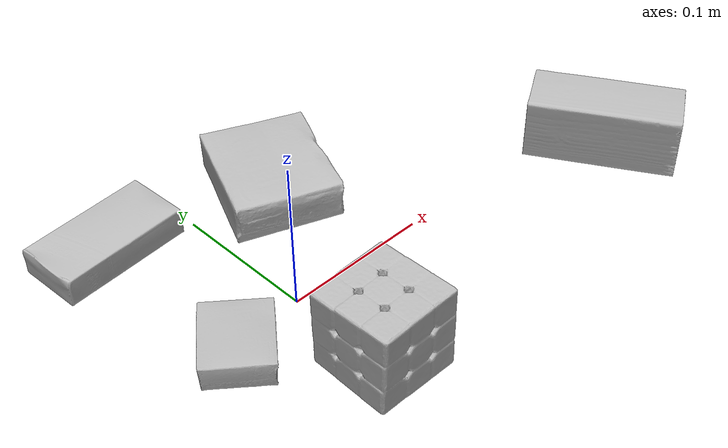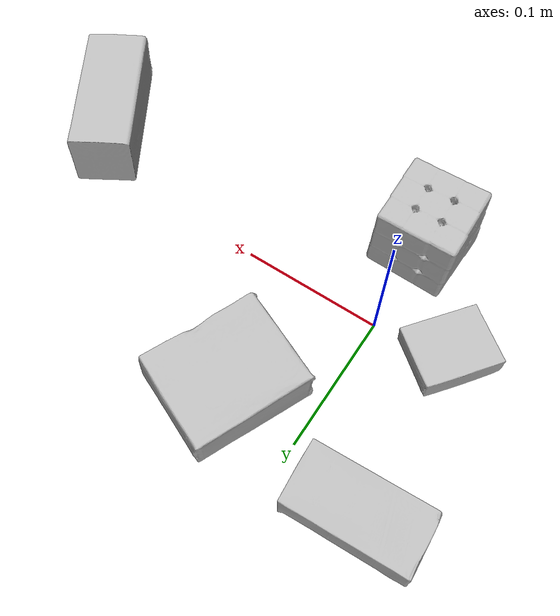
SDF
<sdf version="1.4">
  <world name="default">
    <light name="light1" type="point">
      <pose>0 0 1 0 0 0</pose>
      <diffuse>3 3 3 1</diffuse>
      <specular>3 3 3 1</specular>
    </light>
    <light name="light2" type="point">
      <pose>0 0.5 2 0 0 0</pose>
      <diffuse>1 1 1 1</diffuse>
      <specular>1 1 1 1</specular>
    </light>
    <light name="light3" type="point">
      <pose>0 0.5 2 0 0 0</pose>
      <diffuse>3 3 3 1</diffuse>
      <specular>3 3 3 1</specular>
    </light>
    <scene>
      <ambient>0.7 0.7 0.7</ambient>
    </scene>
    <model name="box1">
      <link name="link_box1">
        <collision name="default">
          <geometry>
            <mesh>
              <uri>model://gelatin_box/collision_meshes/collision.obj</uri>
              <scale>1.0 1.0 1.0</scale>
            </mesh>
          </geometry>
          <surface>
            <friction>
              <ode>
                <mu>0.5</mu>
                <mu2>0.5</mu2>
              </ode>
            </friction>
          <contact>
        <ode>
            <max_vel>0</max_vel>
            <min_depth>0.0001</min_depth>
            <kp>1e8</kp>
        </ode>
    </contact></surface>
        </collision>
        <visual name="default">
          <geometry>
            <mesh>
              <uri>model://gelatin_box/visual_meshes/visual.dae</uri>
              <scale>1.0 1.0 1.0</scale>
            </mesh>
          </geometry>
        </visual>
        <inertial>
          <mass>0.15228882431983948</mass>
          <pose>0.0004319618456065655 0.00011156871914863586 -0.0003640321083366871 -0.00105037218966889 -0.004755816826754503 0.0164405576082189</pose>
          <inertia>
            <ixx>0.00010750349</ixx>
            <iyy>7.678918e-05</iyy>
            <izz>0.00016364428</izz>
            <ixy>0</ixy>
            <ixz>0</ixz>
            <iyz>0</iyz>
          </inertia>
        </inertial>
      </link>
      <pose>0.05817132443189621 0.08935128897428513 0.01516831573098898 0.005597464656113392 -0.00730456803317817 -0.41818879915230667</pose>
    </model>
    <model name="box2">
      <link name="link_box2">
        <collision name="default">
          <geometry>
            <mesh>
              <uri>model://rubiks_cube/collision_meshes/collision.obj</uri>
              <scale>1.0 1.0 1.0</scale>
            </mesh>
          </geometry>
          <surface>
            <friction>
              <ode>
                <mu>0.5</mu>
                <mu2>0.5</mu2>
              </ode>
            </friction>
          <contact>
        <ode>
            <max_vel>0</max_vel>
            <min_depth>0.0001</min_depth>
            <kp>1e8</kp>
        </ode>
    </contact></surface>
        </collision>
        <visual name="default">
          <geometry>
            <mesh>
              <uri>model://rubiks_cube/visual_meshes/visual.dae</uri>
              <scale>1.0 1.0 1.0</scale>
            </mesh>
          </geometry>
        </visual>
        <inertial>
          <mass>0.18699690699577332</mass>
          <pose>2.6721041649580002e-05 5.2569666877388954e-05 -7.264316082000732e-06 -0.054672785544912415 -0.09814058570479768 -0.03445363054661819</pose>
          <inertia>
            <ixx>0.00010332834</ixx>
            <iyy>0.00010284647</iyy>
            <izz>0.000104184575</izz>
            <ixy>0</ixy>
            <ixz>0</ixz>
            <iyz>0</iyz>
          </inertia>
        </inertial>
      </link>
      <pose>0.002490890910848975 -0.07070346921682358 0.028678998351097107 -1.5948326429212968e-06 4.1235462695115295e-07 -1.5521044165700257</pose>
    </model>
    <model name="box3">
      <link name="link_box3">
        <collision name="default">
          <geometry>
            <mesh>
              <uri>model://pudding_box/collision_meshes/collision.obj</uri>
              <scale>0.5 0.5 0.5</scale>
            </mesh>
          </geometry>
          <surface>
            <friction>
              <ode>
                <mu>0.5</mu>
                <mu2>0.5</mu2>
              </ode>
            </friction>
          <contact>
        <ode>
            <max_vel>0</max_vel>
            <min_depth>0.0001</min_depth>
            <kp>1e8</kp>
        </ode>
    </contact></surface>
        </collision>
        <visual name="default">
          <geometry>
            <mesh>
              <uri>model://pudding_box/visual_meshes/visual.dae</uri>
              <scale>0.5 0.5 0.5</scale>
            </mesh>
          </geometry>
        </visual>
        <inertial>
          <mass>0.04129739850759506</mass>
          <pose>0.00024474109522998333 0.00040339428232982755 -0.0002594413817860186 0.005213100432551209 -0.006603796827212886 0.020079819580048088</pose>
          <inertia>
            <ixx>1.1671145e-05</ixx>
            <iyy>7.852431e-06</iyy>
            <izz>1.7235501e-05</izz>
            <ixy>0</ixy>
            <ixz>0</ixz>
            <iyz>0</iyz>
          </inertia>
        </inertial>
      </link>
      <pose>-0.051404111087322235 -0.007832324132323265 0.009862905368208885 0.02234833977334976 -0.01139176943021827 2.470695827291418</pose>
    </model>
    <model name="box4">
      <link name="link_box4">
        <collision name="default">
          <geometry>
            <mesh>
              <uri>model://sugar_box/collision_meshes/collision.obj</uri>
              <scale>0.5 0.5 0.5</scale>
            </mesh>
          </geometry>
          <surface>
            <friction>
              <ode>
                <mu>0.5</mu>
                <mu2>0.5</mu2>
              </ode>
            </friction>
          <contact>
        <ode>
            <max_vel>0</max_vel>
            <min_depth>0.0001</min_depth>
            <kp>1e8</kp>
        </ode>
    </contact></surface>
        </collision>
        <visual name="default">
          <geometry>
            <mesh>
              <uri>model://sugar_box/visual_meshes/visual.dae</uri>
              <scale>0.5 0.5 0.5</scale>
            </mesh>
          </geometry>
        </visual>
        <inertial>
          <mass>0.09136254340410233</mass>
          <pose>0.0005171863595023751 1.924554817378521e-05 -0.00018182402709499002 -0.00040462606744182556 0.0010506635219056535 0.0026153790218759383</pose>
          <inertia>
            <ixx>1.9030753e-05</ixx>
            <iyy>6.15113e-05</iyy>
            <izz>7.363638e-05</izz>
            <ixy>0</ixy>
            <ixz>0</ixz>
            <iyz>0</iyz>
          </inertia>
        </inertial>
      </link>
      <pose>-0.05509775131940842 0.11584147810935974 0.011399306356906891 0.0007745683145943588 -0.023433032672700128 0.05233196301403714</pose>
    </model>
    <model name="box5">
      <link name="link_box5">
        <collision name="default">
          <geometry>
            <mesh>
              <uri>model://wood_block/collision_meshes/collision.obj</uri>
              <scale>0.5 0.5 0.5</scale>
            </mesh>
          </geometry>
          <surface>
            <friction>
              <ode>
                <mu>0.5</mu>
                <mu2>0.5</mu2>
              </ode>
            </friction>
          <contact>
        <ode>
            <max_vel>0</max_vel>
            <min_depth>0.0001</min_depth>
            <kp>1e8</kp>
        </ode>
    </contact></surface>
        </collision>
        <visual name="default">
          <geometry>
            <mesh>
              <uri>model://wood_block/visual_meshes/visual.dae</uri>
              <scale>0.5 0.5 0.5</scale>
            </mesh>
          </geometry>
        </visual>
        <inertial>
          <mass>0.2591090798377991</mass>
          <pose>-2.9066577553749084e-06 -0.00028540470520965755 0.00013204290007706732 -0.05220937491622274 -0.005192696068464721 -0.006861378365732138</pose>
          <inertia>
            <ixx>8.6681786e-05</ixx>
            <iyy>0.00027382775</iyy>
            <izz>0.0002728035</izz>
            <ixy>0</ixy>
            <ixz>0</ixz>
            <iyz>0</iyz>
          </inertia>
        </inertial>
      </link>
      <pose>0.2506140470504761 -0.037615031003952026 0.02262927033007145 -0.005208303900405307 0.0057187528116192324 -1.033400973576179</pose>
    </model>
  <physics type="ode">
      <max_contacts>50</max_contacts>
      <ode>
        <solver>
          <type>quick</type>
          <iters>75</iters>
        </solver>
        <constraints>
          <contact_max_correcting_vel>0</contact_max_correcting_vel>
          <contact_surface_layer>0</contact_surface_layer>
        </constraints>
      </ode>
    </physics></world>
</sdf>
